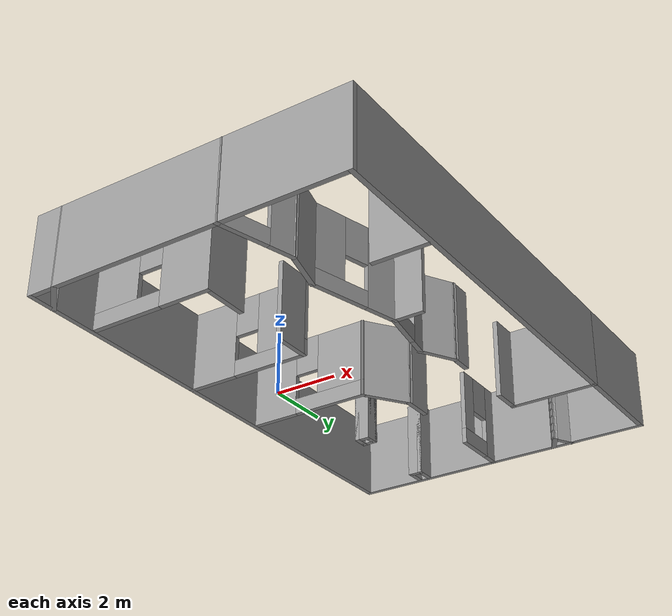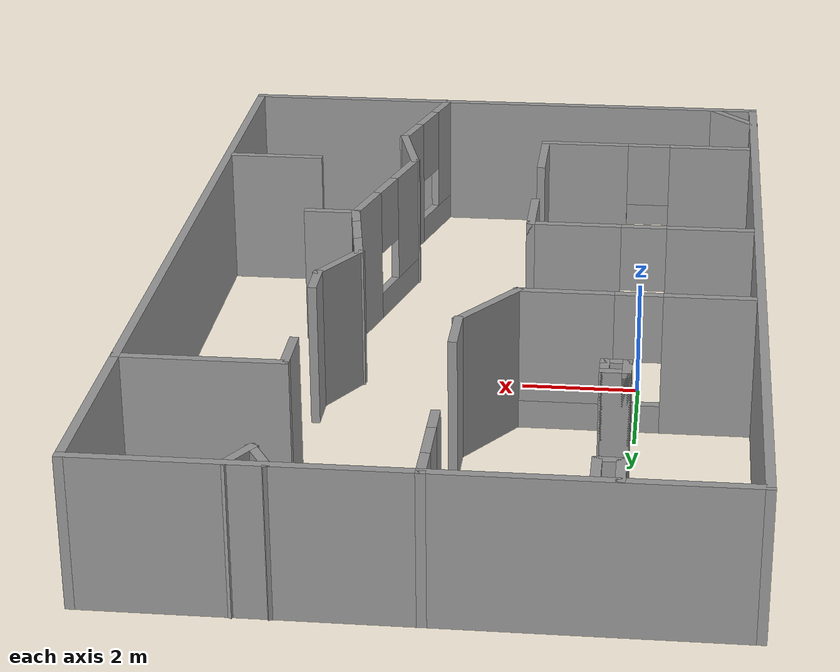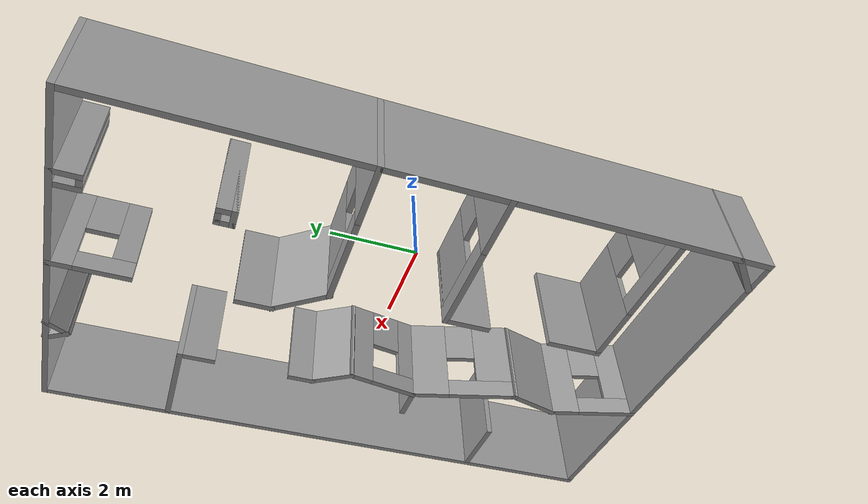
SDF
<?xml version='1.0'?>
<sdf version='1.7'>
  <model name='nano_world'>
    <pose>2.99284 0.007175 0 0 -0 0</pose>
    <link name='Wall_12'>
      <collision name='Wall_12_Collision'>
        <geometry>
          <box>
            <size>5 0.15 2.5</size>
          </box>
        </geometry>
        <pose>0 0 1.25 0 -0 0</pose>
      </collision>
      <visual name='Wall_12_Visual'>
        <pose>0 0 1.25 0 -0 0</pose>
        <geometry>
          <box>
            <size>5 0.15 2.5</size>
          </box>
        </geometry>
        <material>
          <script>
            <uri>file://media/materials/scripts/gazebo.material</uri>
            <name>Gazebo/Grey</name>
          </script>
          <ambient>1 1 1 1</ambient>
        </material>
        <meta>
          <layer>0</layer>
        </meta>
      </visual>
      <pose>-2.56785 7.99282 0 0 -0 0</pose>
    </link>
    <link name='Wall_14'>
      <pose>-0.142845 7.06783 0 0 -0 -1.5708</pose>
      <visual name='Wall_14_Visual_0'>
        <pose>-0.683991 0 1.25 0 -0 0</pose>
        <geometry>
          <box>
            <size>0.632019 0.15 2.5</size>
          </box>
        </geometry>
        <material>
          <script>
            <uri>file://media/materials/scripts/gazebo.material</uri>
            <name>Gazebo/Grey</name>
          </script>
          <ambient>1 1 1 1</ambient>
        </material>
        <meta>
          <layer>0</layer>
        </meta>
      </visual>
      <collision name='Wall_14_Collision_0'>
        <geometry>
          <box>
            <size>0.632019 0.15 2.5</size>
          </box>
        </geometry>
        <pose>-0.683991 0 1.25 0 -0 0</pose>
      </collision>
      <visual name='Wall_14_Visual_1'>
        <pose>0.316009 0 0.25 0 -0 0</pose>
        <geometry>
          <box>
            <size>1.36798 0.15 0.5</size>
          </box>
        </geometry>
        <material>
          <script>
            <uri>file://media/materials/scripts/gazebo.material</uri>
            <name>Gazebo/Grey</name>
          </script>
          <ambient>1 1 1 1</ambient>
        </material>
        <meta>
          <layer>0</layer>
        </meta>
      </visual>
      <collision name='Wall_14_Collision_1'>
        <geometry>
          <box>
            <size>1.36798 0.15 0.5</size>
          </box>
        </geometry>
        <pose>0.316009 0 0.25 0 -0 0</pose>
      </collision>
      <visual name='Wall_14_Visual_2'>
        <pose>0.716009 0 1.5 0 -0 0</pose>
        <geometry>
          <box>
            <size>0.567981 0.15 2</size>
          </box>
        </geometry>
        <material>
          <script>
            <uri>file://media/materials/scripts/gazebo.material</uri>
            <name>Gazebo/Grey</name>
          </script>
          <ambient>1 1 1 1</ambient>
        </material>
        <meta>
          <layer>0</layer>
        </meta>
      </visual>
      <collision name='Wall_14_Collision_2'>
        <geometry>
          <box>
            <size>0.567981 0.15 2</size>
          </box>
        </geometry>
        <pose>0.716009 0 1.5 0 -0 0</pose>
      </collision>
      <visual name='Wall_14_Visual_3'>
        <pose>0.032019 0 1.9 0 -0 0</pose>
        <geometry>
          <box>
            <size>0.8 0.15 1.2</size>
          </box>
        </geometry>
        <material>
          <script>
            <uri>file://media/materials/scripts/gazebo.material</uri>
            <name>Gazebo/Grey</name>
          </script>
          <ambient>1 1 1 1</ambient>
        </material>
        <meta>
          <layer>0</layer>
        </meta>
      </visual>
      <collision name='Wall_14_Collision_3'>
        <geometry>
          <box>
            <size>0.8 0.15 1.2</size>
          </box>
        </geometry>
        <pose>0.032019 0 1.9 0 -0 0</pose>
      </collision>
    </link>
    <link name='Wall_16'>
      <collision name='Wall_16_Collision'>
        <geometry>
          <box>
            <size>1 0.15 2.5</size>
          </box>
        </geometry>
        <pose>0 0 1.25 0 -0 0</pose>
      </collision>
      <visual name='Wall_16_Visual'>
        <pose>0 0 1.25 0 -0 0</pose>
        <geometry>
          <box>
            <size>1 0.15 2.5</size>
          </box>
        </geometry>
        <material>
          <script>
            <uri>file://media/materials/scripts/gazebo.material</uri>
            <name>Gazebo/Grey</name>
          </script>
          <ambient>1 1 1 1</ambient>
        </material>
        <meta>
          <layer>0</layer>
        </meta>
      </visual>
      <pose>-0.136862 3.16166 0 0 -0 -1.5708</pose>
    </link>
    <link name='Wall_18'>
      <collision name='Wall_18_Collision'>
        <geometry>
          <box>
            <size>1.65991 0.15 2.5</size>
          </box>
        </geometry>
        <pose>0 0 1.25 0 -0 0</pose>
      </collision>
      <visual name='Wall_18_Visual'>
        <pose>0 0 1.25 0 -0 0</pose>
        <geometry>
          <box>
            <size>1.65991 0.15 2.5</size>
          </box>
        </geometry>
        <material>
          <script>
            <uri>file://media/materials/scripts/gazebo.material</uri>
            <name>Gazebo/Grey</name>
          </script>
          <ambient>1 1 1 1</ambient>
        </material>
        <meta>
          <layer>0</layer>
        </meta>
      </visual>
      <pose>-0.564853 2.11474 0 0 -0 -2.17355</pose>
    </link>
    <link name='Wall_2'>
      <collision name='Wall_2_Collision'>
        <geometry>
          <box>
            <size>16.15 0.15 2.5</size>
          </box>
        </geometry>
        <pose>0 0 1.25 0 -0 0</pose>
      </collision>
      <visual name='Wall_2_Visual'>
        <pose>0 0 1.25 0 -0 0</pose>
        <geometry>
          <box>
            <size>16.15 0.15 2.5</size>
          </box>
        </geometry>
        <material>
          <script>
            <uri>file://media/materials/scripts/gazebo.material</uri>
            <name>Gazebo/Grey</name>
          </script>
          <ambient>1 1 1 1</ambient>
        </material>
        <meta>
          <layer>0</layer>
        </meta>
      </visual>
      <pose>-4.99284 -0.007175 0 0 -0 -1.5708</pose>
    </link>
    <link name='Wall_20'>
      <collision name='Wall_20_Collision'>
        <geometry>
          <box>
            <size>5.3 0.15 2.5</size>
          </box>
        </geometry>
        <pose>0 0 1.25 0 -0 0</pose>
      </collision>
      <visual name='Wall_20_Visual'>
        <pose>0 0 1.25 0 -0 0</pose>
        <geometry>
          <box>
            <size>5.3 0.15 2.5</size>
          </box>
        </geometry>
        <material>
          <script>
            <uri>file://media/materials/scripts/gazebo.material</uri>
            <name>Gazebo/Grey</name>
          </script>
          <ambient>1 1 1 1</ambient>
        </material>
        <meta>
          <layer>0</layer>
        </meta>
      </visual>
      <pose>2.43216 7.99282 0 0 -0 0</pose>
    </link>
    <link name='Wall_22'>
      <collision name='Wall_22_Collision'>
        <geometry>
          <box>
            <size>3.5 0.15 2.5</size>
          </box>
        </geometry>
        <pose>0 0 1.25 0 -0 0</pose>
      </collision>
      <visual name='Wall_22_Visual'>
        <pose>0 0 1.25 0 -0 0</pose>
        <geometry>
          <box>
            <size>3.5 0.15 2.5</size>
          </box>
        </geometry>
        <material>
          <script>
            <uri>file://media/materials/scripts/gazebo.material</uri>
            <name>Gazebo/Grey</name>
          </script>
          <ambient>1 1 1 1</ambient>
        </material>
        <meta>
          <layer>0</layer>
        </meta>
      </visual>
      <pose>5.00716 6.31783 0 0 -0 -1.5708</pose>
    </link>
    <link name='Wall_23'>
      <collision name='Wall_23_Collision'>
        <geometry>
          <box>
            <size>2.8 0.15 2.5</size>
          </box>
        </geometry>
        <pose>0 0 1.25 0 -0 0</pose>
      </collision>
      <visual name='Wall_23_Visual'>
        <pose>0 0 1.25 0 -0 0</pose>
        <geometry>
          <box>
            <size>2.8 0.15 2.5</size>
          </box>
        </geometry>
        <material>
          <script>
            <uri>file://media/materials/scripts/gazebo.material</uri>
            <name>Gazebo/Grey</name>
          </script>
          <ambient>1 1 1 1</ambient>
        </material>
        <meta>
          <layer>0</layer>
        </meta>
      </visual>
      <pose>3.68216 4.64283 0 0 -0 3.14159</pose>
    </link>
    <link name='Wall_29'>
      <collision name='Wall_29_Collision'>
        <geometry>
          <box>
            <size>1 0.15 2.5</size>
          </box>
        </geometry>
        <pose>0 0 1.25 0 -0 0</pose>
      </collision>
      <visual name='Wall_29_Visual'>
        <pose>0 0 1.25 0 -0 0</pose>
        <geometry>
          <box>
            <size>1 0.15 2.5</size>
          </box>
        </geometry>
        <material>
          <script>
            <uri>file://media/materials/scripts/gazebo.material</uri>
            <name>Gazebo/Grey</name>
          </script>
          <ambient>1 1 1 1</ambient>
        </material>
        <meta>
          <layer>0</layer>
        </meta>
      </visual>
      <pose>2.35716 4.21783 0 0 -0 -1.5708</pose>
    </link>
    <link name='Wall_31'>
      <collision name='Wall_31_Collision'>
        <geometry>
          <box>
            <size>12.8 0.15 2.5</size>
          </box>
        </geometry>
        <pose>0 0 1.25 0 -0 0</pose>
      </collision>
      <visual name='Wall_31_Visual'>
        <pose>0 0 1.25 0 -0 0</pose>
        <geometry>
          <box>
            <size>12.8 0.15 2.5</size>
          </box>
        </geometry>
        <material>
          <script>
            <uri>file://media/materials/scripts/gazebo.material</uri>
            <name>Gazebo/Grey</name>
          </script>
          <ambient>1 1 1 1</ambient>
        </material>
        <meta>
          <layer>0</layer>
        </meta>
      </visual>
      <pose>5.00716 -1.68217 0 0 -0 -1.5708</pose>
    </link>
    <link name='Wall_35'>
      <collision name='Wall_35_Collision'>
        <geometry>
          <box>
            <size>0.75 0.15 2.5</size>
          </box>
        </geometry>
        <pose>0 0 1.25 0 -0 0</pose>
      </collision>
      <visual name='Wall_35_Visual'>
        <pose>0 0 1.25 0 -0 0</pose>
        <geometry>
          <box>
            <size>0.75 0.15 2.5</size>
          </box>
        </geometry>
        <material>
          <script>
            <uri>file://media/materials/scripts/gazebo.material</uri>
            <name>Gazebo/Grey</name>
          </script>
          <ambient>1 1 1 1</ambient>
        </material>
        <meta>
          <layer>0</layer>
        </meta>
      </visual>
      <pose>2.39925 1.36893 0 0 -0 -1.5708</pose>
    </link>
    <link name='Wall_36'>
      <collision name='Wall_36_Collision'>
        <geometry>
          <box>
            <size>1.25 0.15 2.5</size>
          </box>
        </geometry>
        <pose>0 0 1.25 0 -0 0</pose>
      </collision>
      <visual name='Wall_36_Visual'>
        <pose>0 0 1.25 0 -0 0</pose>
        <geometry>
          <box>
            <size>1.25 0.15 2.5</size>
          </box>
        </geometry>
        <material>
          <script>
            <uri>file://media/materials/scripts/gazebo.material</uri>
            <name>Gazebo/Grey</name>
          </script>
          <ambient>1 1 1 1</ambient>
        </material>
        <meta>
          <layer>0</layer>
        </meta>
      </visual>
      <pose>2.12425 0.592618 0 0 -0 -2.0944</pose>
    </link>
    <link name='Wall_41'>
      <collision name='Wall_41_Collision'>
        <geometry>
          <box>
            <size>1.25 0.15 2.5</size>
          </box>
        </geometry>
        <pose>0 0 1.25 0 -0 0</pose>
      </collision>
      <visual name='Wall_41_Visual'>
        <pose>0 0 1.25 0 -0 0</pose>
        <geometry>
          <box>
            <size>1.25 0.15 2.5</size>
          </box>
        </geometry>
        <material>
          <script>
            <uri>file://media/materials/scripts/gazebo.material</uri>
            <name>Gazebo/Grey</name>
          </script>
          <ambient>1 1 1 1</ambient>
        </material>
        <meta>
          <layer>0</layer>
        </meta>
      </visual>
      <pose>-0.992845 -2.05717 0 0 -0 -1.5708</pose>
    </link>
    <link name='Wall_43'>
      <collision name='Wall_43_Collision'>
        <geometry>
          <box>
            <size>1.5 0.15 2.5</size>
          </box>
        </geometry>
        <pose>0 0 1.25 0 -0 0</pose>
      </collision>
      <visual name='Wall_43_Visual'>
        <pose>0 0 1.25 0 -0 0</pose>
        <geometry>
          <box>
            <size>1.5 0.15 2.5</size>
          </box>
        </geometry>
        <material>
          <script>
            <uri>file://media/materials/scripts/gazebo.material</uri>
            <name>Gazebo/Grey</name>
          </script>
          <ambient>1 1 1 1</ambient>
        </material>
        <meta>
          <layer>0</layer>
        </meta>
      </visual>
      <pose>-0.981755 -5.0631 0 0 -0 -1.5708</pose>
    </link>
    <link name='Wall_46'>
      <pose>-2.90676 -5.7381 0 0 -0 3.14159</pose>
      <visual name='Wall_46_Visual_0'>
        <pose>-1.16576 0 1.25 0 -0 0</pose>
        <geometry>
          <box>
            <size>1.66847 0.15 2.5</size>
          </box>
        </geometry>
        <material>
          <script>
            <uri>file://media/materials/scripts/gazebo.material</uri>
            <name>Gazebo/Grey</name>
          </script>
          <ambient>1 1 1 1</ambient>
        </material>
        <meta>
          <layer>0</layer>
        </meta>
      </visual>
      <collision name='Wall_46_Collision_0'>
        <geometry>
          <box>
            <size>1.66847 0.15 2.5</size>
          </box>
        </geometry>
        <pose>-1.16576 0 1.25 0 -0 0</pose>
      </collision>
      <visual name='Wall_46_Visual_1'>
        <pose>0.834236 0 0.25 0 -0 0</pose>
        <geometry>
          <box>
            <size>2.33153 0.15 0.5</size>
          </box>
        </geometry>
        <material>
          <script>
            <uri>file://media/materials/scripts/gazebo.material</uri>
            <name>Gazebo/Grey</name>
          </script>
          <ambient>1 1 1 1</ambient>
        </material>
        <meta>
          <layer>0</layer>
        </meta>
      </visual>
      <collision name='Wall_46_Collision_1'>
        <geometry>
          <box>
            <size>2.33153 0.15 0.5</size>
          </box>
        </geometry>
        <pose>0.834236 0 0.25 0 -0 0</pose>
      </collision>
      <visual name='Wall_46_Visual_2'>
        <pose>1.23424 0 1.5 0 -0 0</pose>
        <geometry>
          <box>
            <size>1.53153 0.15 2</size>
          </box>
        </geometry>
        <material>
          <script>
            <uri>file://media/materials/scripts/gazebo.material</uri>
            <name>Gazebo/Grey</name>
          </script>
          <ambient>1 1 1 1</ambient>
        </material>
        <meta>
          <layer>0</layer>
        </meta>
      </visual>
      <collision name='Wall_46_Collision_2'>
        <geometry>
          <box>
            <size>1.53153 0.15 2</size>
          </box>
        </geometry>
        <pose>1.23424 0 1.5 0 -0 0</pose>
      </collision>
      <visual name='Wall_46_Visual_3'>
        <pose>0.068471 0 1.9 0 -0 0</pose>
        <geometry>
          <box>
            <size>0.8 0.15 1.2</size>
          </box>
        </geometry>
        <material>
          <script>
            <uri>file://media/materials/scripts/gazebo.material</uri>
            <name>Gazebo/Grey</name>
          </script>
          <ambient>1 1 1 1</ambient>
        </material>
        <meta>
          <layer>0</layer>
        </meta>
      </visual>
      <collision name='Wall_46_Collision_3'>
        <geometry>
          <box>
            <size>0.8 0.15 1.2</size>
          </box>
        </geometry>
        <pose>0.068471 0 1.9 0 -0 0</pose>
      </collision>
    </link>
    <link name='Wall_48'>
      <collision name='Wall_48_Collision'>
        <geometry>
          <box>
            <size>10.15 0.15 2.5</size>
          </box>
        </geometry>
        <pose>0 0 1.25 0 -0 0</pose>
      </collision>
      <visual name='Wall_48_Visual'>
        <pose>0 0 1.25 0 -0 0</pose>
        <geometry>
          <box>
            <size>10.15 0.15 2.5</size>
          </box>
        </geometry>
        <material>
          <script>
            <uri>file://media/materials/scripts/gazebo.material</uri>
            <name>Gazebo/Grey</name>
          </script>
          <ambient>1 1 1 1</ambient>
        </material>
        <meta>
          <layer>0</layer>
        </meta>
      </visual>
      <pose>0.007155 -8.00718 0 0 -0 0</pose>
    </link>
    <link name='Wall_5'>
      <pose>-2.99284 1.49283 0 0 -0 0</pose>
      <visual name='Wall_5_Visual_0'>
        <pose>-1.2375 0 1.25 0 -0 0</pose>
        <geometry>
          <box>
            <size>1.675 0.15 2.5</size>
          </box>
        </geometry>
        <material>
          <script>
            <uri>file://media/materials/scripts/gazebo.material</uri>
            <name>Gazebo/Grey</name>
          </script>
          <ambient>1 1 1 1</ambient>
        </material>
        <meta>
          <layer>0</layer>
        </meta>
      </visual>
      <collision name='Wall_5_Collision_0'>
        <geometry>
          <box>
            <size>1.675 0.15 2.5</size>
          </box>
        </geometry>
        <pose>-1.2375 0 1.25 0 -0 0</pose>
      </collision>
      <visual name='Wall_5_Visual_1'>
        <pose>0.8375 0 0.25 0 -0 0</pose>
        <geometry>
          <box>
            <size>2.475 0.15 0.5</size>
          </box>
        </geometry>
        <material>
          <script>
            <uri>file://media/materials/scripts/gazebo.material</uri>
            <name>Gazebo/Grey</name>
          </script>
          <ambient>1 1 1 1</ambient>
        </material>
        <meta>
          <layer>0</layer>
        </meta>
      </visual>
      <collision name='Wall_5_Collision_1'>
        <geometry>
          <box>
            <size>2.475 0.15 0.5</size>
          </box>
        </geometry>
        <pose>0.8375 0 0.25 0 -0 0</pose>
      </collision>
      <visual name='Wall_5_Visual_2'>
        <pose>1.2375 0 1.5 0 -0 0</pose>
        <geometry>
          <box>
            <size>1.675 0.15 2</size>
          </box>
        </geometry>
        <material>
          <script>
            <uri>file://media/materials/scripts/gazebo.material</uri>
            <name>Gazebo/Grey</name>
          </script>
          <ambient>1 1 1 1</ambient>
        </material>
        <meta>
          <layer>0</layer>
        </meta>
      </visual>
      <collision name='Wall_5_Collision_2'>
        <geometry>
          <box>
            <size>1.675 0.15 2</size>
          </box>
        </geometry>
        <pose>1.2375 0 1.5 0 -0 0</pose>
      </collision>
      <visual name='Wall_5_Visual_3'>
        <pose>0 0 1.9 0 -0 0</pose>
        <geometry>
          <box>
            <size>0.8 0.15 1.2</size>
          </box>
        </geometry>
        <material>
          <script>
            <uri>file://media/materials/scripts/gazebo.material</uri>
            <name>Gazebo/Grey</name>
          </script>
          <ambient>1 1 1 1</ambient>
        </material>
        <meta>
          <layer>0</layer>
        </meta>
      </visual>
      <collision name='Wall_5_Collision_3'>
        <geometry>
          <box>
            <size>0.8 0.15 1.2</size>
          </box>
        </geometry>
        <pose>0 0 1.9 0 -0 0</pose>
      </collision>
    </link>
    <link name='Wall_52'>
      <pose>2.0071 -0.810513 0 0 -0 -1.4021</pose>
      <visual name='Wall_52_Visual_0'>
        <pose>-0.669959 0 1.25 0 -0 0</pose>
        <geometry>
          <box>
            <size>0.690408 0.15 2.5</size>
          </box>
        </geometry>
        <material>
          <script>
            <uri>file://media/materials/scripts/gazebo.material</uri>
            <name>Gazebo/Grey</name>
          </script>
          <ambient>1 1 1 1</ambient>
        </material>
        <meta>
          <layer>0</layer>
        </meta>
      </visual>
      <collision name='Wall_52_Collision_0'>
        <geometry>
          <box>
            <size>0.690408 0.15 2.5</size>
          </box>
        </geometry>
        <pose>-0.669959 0 1.25 0 -0 0</pose>
      </collision>
      <visual name='Wall_52_Visual_1'>
        <pose>0.345204 0 0.25 0 -0 0</pose>
        <geometry>
          <box>
            <size>1.33992 0.15 0.5</size>
          </box>
        </geometry>
        <material>
          <script>
            <uri>file://media/materials/scripts/gazebo.material</uri>
            <name>Gazebo/Grey</name>
          </script>
          <ambient>1 1 1 1</ambient>
        </material>
        <meta>
          <layer>0</layer>
        </meta>
      </visual>
      <collision name='Wall_52_Collision_1'>
        <geometry>
          <box>
            <size>1.33992 0.15 0.5</size>
          </box>
        </geometry>
        <pose>0.345204 0 0.25 0 -0 0</pose>
      </collision>
      <visual name='Wall_52_Visual_2'>
        <pose>0.745204 0 1.5 0 -0 0</pose>
        <geometry>
          <box>
            <size>0.539918 0.15 2</size>
          </box>
        </geometry>
        <material>
          <script>
            <uri>file://media/materials/scripts/gazebo.material</uri>
            <name>Gazebo/Grey</name>
          </script>
          <ambient>1 1 1 1</ambient>
        </material>
        <meta>
          <layer>0</layer>
        </meta>
      </visual>
      <collision name='Wall_52_Collision_2'>
        <geometry>
          <box>
            <size>0.539918 0.15 2</size>
          </box>
        </geometry>
        <pose>0.745204 0 1.5 0 -0 0</pose>
      </collision>
      <visual name='Wall_52_Visual_3'>
        <pose>0.075245 0 1.9 0 -0 0</pose>
        <geometry>
          <box>
            <size>0.8 0.15 1.2</size>
          </box>
        </geometry>
        <material>
          <script>
            <uri>file://media/materials/scripts/gazebo.material</uri>
            <name>Gazebo/Grey</name>
          </script>
          <ambient>1 1 1 1</ambient>
        </material>
        <meta>
          <layer>0</layer>
        </meta>
      </visual>
      <collision name='Wall_52_Collision_3'>
        <geometry>
          <box>
            <size>0.8 0.15 1.2</size>
          </box>
        </geometry>
        <pose>0.075245 0 1.9 0 -0 0</pose>
      </collision>
    </link>
    <link name='Wall_53'>
      <pose>1.79613 -3.11377 0 0 -0 -1.8326</pose>
      <visual name='Wall_53_Visual_0'>
        <pose>-0.956577 0 1.25 0 -0 0</pose>
        <geometry>
          <box>
            <size>1.08685 0.15 2.5</size>
          </box>
        </geometry>
        <material>
          <script>
            <uri>file://media/materials/scripts/gazebo.material</uri>
            <name>Gazebo/Grey</name>
          </script>
          <ambient>1 1 1 1</ambient>
        </material>
        <meta>
          <layer>0</layer>
        </meta>
      </visual>
      <collision name='Wall_53_Collision_0'>
        <geometry>
          <box>
            <size>1.08685 0.15 2.5</size>
          </box>
        </geometry>
        <pose>-0.956577 0 1.25 0 -0 0</pose>
      </collision>
      <visual name='Wall_53_Visual_1'>
        <pose>0.543423 0 0.25 0 -0 0</pose>
        <geometry>
          <box>
            <size>1.91315 0.15 0.5</size>
          </box>
        </geometry>
        <material>
          <script>
            <uri>file://media/materials/scripts/gazebo.material</uri>
            <name>Gazebo/Grey</name>
          </script>
          <ambient>1 1 1 1</ambient>
        </material>
        <meta>
          <layer>0</layer>
        </meta>
      </visual>
      <collision name='Wall_53_Collision_1'>
        <geometry>
          <box>
            <size>1.91315 0.15 0.5</size>
          </box>
        </geometry>
        <pose>0.543423 0 0.25 0 -0 0</pose>
      </collision>
      <visual name='Wall_53_Visual_2'>
        <pose>0.943423 0 1.5 0 -0 0</pose>
        <geometry>
          <box>
            <size>1.11315 0.15 2</size>
          </box>
        </geometry>
        <material>
          <script>
            <uri>file://media/materials/scripts/gazebo.material</uri>
            <name>Gazebo/Grey</name>
          </script>
          <ambient>1 1 1 1</ambient>
        </material>
        <meta>
          <layer>0</layer>
        </meta>
      </visual>
      <collision name='Wall_53_Collision_2'>
        <geometry>
          <box>
            <size>1.11315 0.15 2</size>
          </box>
        </geometry>
        <pose>0.943423 0 1.5 0 -0 0</pose>
      </collision>
      <visual name='Wall_53_Visual_3'>
        <pose>-0.013154 0 1.9 0 -0 0</pose>
        <geometry>
          <box>
            <size>0.8 0.15 1.2</size>
          </box>
        </geometry>
        <material>
          <script>
            <uri>file://media/materials/scripts/gazebo.material</uri>
            <name>Gazebo/Grey</name>
          </script>
          <ambient>1 1 1 1</ambient>
        </material>
        <meta>
          <layer>0</layer>
        </meta>
      </visual>
      <collision name='Wall_53_Collision_3'>
        <geometry>
          <box>
            <size>0.8 0.15 1.2</size>
          </box>
        </geometry>
        <pose>-0.013154 0 1.9 0 -0 0</pose>
      </collision>
    </link>
    <link name='Wall_54'>
      <collision name='Wall_54_Collision'>
        <geometry>
          <box>
            <size>1.5 0.15 2.5</size>
          </box>
        </geometry>
        <pose>0 0 1.25 0 -0 0</pose>
      </collision>
      <visual name='Wall_54_Visual'>
        <pose>0 0 1.25 0 -0 0</pose>
        <geometry>
          <box>
            <size>1.5 0.15 2.5</size>
          </box>
        </geometry>
        <material>
          <script>
            <uri>file://media/materials/scripts/gazebo.material</uri>
            <name>Gazebo/Grey</name>
          </script>
          <ambient>1 1 1 1</ambient>
        </material>
        <meta>
          <layer>0</layer>
        </meta>
      </visual>
      <pose>1.60224 -5.1422 0 0 -0 -1.30868</pose>
    </link>
    <link name='Wall_55'>
      <pose>1.47266 -6.90067 0 0 -0 -1.83934</pose>
      <visual name='Wall_55_Visual_0'>
        <pose>-0.796386 0 1.25 0 -0 0</pose>
        <geometry>
          <box>
            <size>0.852496 0.15 2.5</size>
          </box>
        </geometry>
        <material>
          <script>
            <uri>file://media/materials/scripts/gazebo.material</uri>
            <name>Gazebo/Grey</name>
          </script>
          <ambient>1 1 1 1</ambient>
        </material>
        <meta>
          <layer>0</layer>
        </meta>
      </visual>
      <collision name='Wall_55_Collision_0'>
        <geometry>
          <box>
            <size>0.852496 0.15 2.5</size>
          </box>
        </geometry>
        <pose>-0.796386 0 1.25 0 -0 0</pose>
      </collision>
      <visual name='Wall_55_Visual_1'>
        <pose>0.426248 0 0.25 0 -0 0</pose>
        <geometry>
          <box>
            <size>1.59277 0.15 0.5</size>
          </box>
        </geometry>
        <material>
          <script>
            <uri>file://media/materials/scripts/gazebo.material</uri>
            <name>Gazebo/Grey</name>
          </script>
          <ambient>1 1 1 1</ambient>
        </material>
        <meta>
          <layer>0</layer>
        </meta>
      </visual>
      <collision name='Wall_55_Collision_1'>
        <geometry>
          <box>
            <size>1.59277 0.15 0.5</size>
          </box>
        </geometry>
        <pose>0.426248 0 0.25 0 -0 0</pose>
      </collision>
      <visual name='Wall_55_Visual_2'>
        <pose>0.826248 0 1.5 0 -0 0</pose>
        <geometry>
          <box>
            <size>0.792771 0.15 2</size>
          </box>
        </geometry>
        <material>
          <script>
            <uri>file://media/materials/scripts/gazebo.material</uri>
            <name>Gazebo/Grey</name>
          </script>
          <ambient>1 1 1 1</ambient>
        </material>
        <meta>
          <layer>0</layer>
        </meta>
      </visual>
      <collision name='Wall_55_Collision_2'>
        <geometry>
          <box>
            <size>0.792771 0.15 2</size>
          </box>
        </geometry>
        <pose>0.826248 0 1.5 0 -0 0</pose>
      </collision>
      <visual name='Wall_55_Visual_3'>
        <pose>0.029862 0 1.9 0 -0 0</pose>
        <geometry>
          <box>
            <size>0.8 0.15 1.2</size>
          </box>
        </geometry>
        <material>
          <script>
            <uri>file://media/materials/scripts/gazebo.material</uri>
            <name>Gazebo/Grey</name>
          </script>
          <ambient>1 1 1 1</ambient>
        </material>
        <meta>
          <layer>0</layer>
        </meta>
      </visual>
      <collision name='Wall_55_Collision_3'>
        <geometry>
          <box>
            <size>0.8 0.15 1.2</size>
          </box>
        </geometry>
        <pose>0.029862 0 1.9 0 -0 0</pose>
      </collision>
    </link>
    <link name='Wall_57'>
      <collision name='Wall_57_Collision'>
        <geometry>
          <box>
            <size>1.25 0.15 2.5</size>
          </box>
        </geometry>
        <pose>0 0 1.25 0 -0 0</pose>
      </collision>
      <visual name='Wall_57_Visual'>
        <pose>0 0 1.25 0 -0 0</pose>
        <geometry>
          <box>
            <size>1.25 0.15 2.5</size>
          </box>
        </geometry>
        <material>
          <script>
            <uri>file://media/materials/scripts/gazebo.material</uri>
            <name>Gazebo/Grey</name>
          </script>
          <ambient>1 1 1 1</ambient>
        </material>
        <meta>
          <layer>0</layer>
        </meta>
      </visual>
      <pose>-4.58718 -7.60573 0 0 -0 -0.785398</pose>
    </link>
    <link name='Wall_62'>
      <collision name='Wall_62_Collision'>
        <geometry>
          <box>
            <size>1.75 0.15 2.5</size>
          </box>
        </geometry>
        <pose>0 0 1.25 0 -0 0</pose>
      </collision>
      <visual name='Wall_62_Visual'>
        <pose>0 0 1.25 0 -0 0</pose>
        <geometry>
          <box>
            <size>1.75 0.15 2.5</size>
          </box>
        </geometry>
        <material>
          <script>
            <uri>file://media/materials/scripts/gazebo.material</uri>
            <name>Gazebo/Grey</name>
          </script>
          <ambient>1 1 1 1</ambient>
        </material>
        <meta>
          <layer>0</layer>
        </meta>
      </visual>
      <pose>4.07732 -4.49022 0 0 -0 0</pose>
    </link>
    <link name='Wall_67'>
      <collision name='Wall_67_Collision'>
        <geometry>
          <box>
            <size>1 0.15 2.5</size>
          </box>
        </geometry>
        <pose>0 0 1.25 0 -0 0</pose>
      </collision>
      <visual name='Wall_67_Visual'>
        <pose>0 0 1.25 0 -0 0</pose>
        <geometry>
          <box>
            <size>1 0.15 2.5</size>
          </box>
        </geometry>
        <material>
          <script>
            <uri>file://media/materials/scripts/gazebo.material</uri>
            <name>Gazebo/Grey</name>
          </script>
          <ambient>1 1 1 1</ambient>
        </material>
        <meta>
          <layer>0</layer>
        </meta>
      </visual>
      <pose>2.58995 -1.73733 0 0 -0 0</pose>
    </link>
    <link name='Wall_7'>
      <pose>-2.99284 -1.50717 0 0 -0 0</pose>
      <visual name='Wall_7_Visual_0'>
        <pose>-1.2375 0 1.25 0 -0 0</pose>
        <geometry>
          <box>
            <size>1.675 0.15 2.5</size>
          </box>
        </geometry>
        <material>
          <script>
            <uri>file://media/materials/scripts/gazebo.material</uri>
            <name>Gazebo/Grey</name>
          </script>
          <ambient>1 1 1 1</ambient>
        </material>
        <meta>
          <layer>0</layer>
        </meta>
      </visual>
      <collision name='Wall_7_Collision_0'>
        <geometry>
          <box>
            <size>1.675 0.15 2.5</size>
          </box>
        </geometry>
        <pose>-1.2375 0 1.25 0 -0 0</pose>
      </collision>
      <visual name='Wall_7_Visual_1'>
        <pose>0.8375 0 0.25 0 -0 0</pose>
        <geometry>
          <box>
            <size>2.475 0.15 0.5</size>
          </box>
        </geometry>
        <material>
          <script>
            <uri>file://media/materials/scripts/gazebo.material</uri>
            <name>Gazebo/Grey</name>
          </script>
          <ambient>1 1 1 1</ambient>
        </material>
        <meta>
          <layer>0</layer>
        </meta>
      </visual>
      <collision name='Wall_7_Collision_1'>
        <geometry>
          <box>
            <size>2.475 0.15 0.5</size>
          </box>
        </geometry>
        <pose>0.8375 0 0.25 0 -0 0</pose>
      </collision>
      <visual name='Wall_7_Visual_2'>
        <pose>1.2375 0 1.5 0 -0 0</pose>
        <geometry>
          <box>
            <size>1.675 0.15 2</size>
          </box>
        </geometry>
        <material>
          <script>
            <uri>file://media/materials/scripts/gazebo.material</uri>
            <name>Gazebo/Grey</name>
          </script>
          <ambient>1 1 1 1</ambient>
        </material>
        <meta>
          <layer>0</layer>
        </meta>
      </visual>
      <collision name='Wall_7_Collision_2'>
        <geometry>
          <box>
            <size>1.675 0.15 2</size>
          </box>
        </geometry>
        <pose>1.2375 0 1.5 0 -0 0</pose>
      </collision>
      <visual name='Wall_7_Visual_3'>
        <pose>0 0 1.9 0 -0 0</pose>
        <geometry>
          <box>
            <size>0.8 0.15 1.2</size>
          </box>
        </geometry>
        <material>
          <script>
            <uri>file://media/materials/scripts/gazebo.material</uri>
            <name>Gazebo/Grey</name>
          </script>
          <ambient>1 1 1 1</ambient>
        </material>
        <meta>
          <layer>0</layer>
        </meta>
      </visual>
      <collision name='Wall_7_Collision_3'>
        <geometry>
          <box>
            <size>0.8 0.15 1.2</size>
          </box>
        </geometry>
        <pose>0 0 1.9 0 -0 0</pose>
      </collision>
    </link>
    <link name='Wall_70'>
      <collision name='Wall_70_Collision'>
        <geometry>
          <box>
            <size>0.5 0.15 2.5</size>
          </box>
        </geometry>
        <pose>0 0 1.25 0 -0 0</pose>
      </collision>
      <visual name='Wall_70_Visual'>
        <pose>0 0 1.25 0 -0 0</pose>
        <geometry>
          <box>
            <size>0.5 0.15 2.5</size>
          </box>
        </geometry>
        <material>
          <script>
            <uri>file://media/materials/scripts/gazebo.material</uri>
            <name>Gazebo/Grey</name>
          </script>
          <ambient>1 1 1 1</ambient>
        </material>
        <meta>
          <layer>0</layer>
        </meta>
      </visual>
      <pose>-2.89381 4.29486 0 0 -0 -1.5708</pose>
    </link>
    <link name='Wall_71'>
      <collision name='Wall_71_Collision'>
        <geometry>
          <box>
            <size>0.5 0.15 2.5</size>
          </box>
        </geometry>
        <pose>0 0 1.25 0 -0 0</pose>
      </collision>
      <visual name='Wall_71_Visual'>
        <pose>0 0 1.25 0 -0 0</pose>
        <geometry>
          <box>
            <size>0.5 0.15 2.5</size>
          </box>
        </geometry>
        <material>
          <script>
            <uri>file://media/materials/scripts/gazebo.material</uri>
            <name>Gazebo/Grey</name>
          </script>
          <ambient>1 1 1 1</ambient>
        </material>
        <meta>
          <layer>0</layer>
        </meta>
      </visual>
      <pose>-2.71881 4.11986 0 0 -0 0</pose>
    </link>
    <link name='Wall_72'>
      <collision name='Wall_72_Collision'>
        <geometry>
          <box>
            <size>0.5 0.15 2.5</size>
          </box>
        </geometry>
        <pose>0 0 1.25 0 -0 0</pose>
      </collision>
      <visual name='Wall_72_Visual'>
        <pose>0 0 1.25 0 -0 0</pose>
        <geometry>
          <box>
            <size>0.5 0.15 2.5</size>
          </box>
        </geometry>
        <material>
          <script>
            <uri>file://media/materials/scripts/gazebo.material</uri>
            <name>Gazebo/Grey</name>
          </script>
          <ambient>1 1 1 1</ambient>
        </material>
        <meta>
          <layer>0</layer>
        </meta>
      </visual>
      <pose>-2.54381 4.29486 0 0 -0 1.5708</pose>
    </link>
    <link name='Wall_73'>
      <collision name='Wall_73_Collision'>
        <geometry>
          <box>
            <size>0.5 0.15 2.5</size>
          </box>
        </geometry>
        <pose>0 0 1.25 0 -0 0</pose>
      </collision>
      <visual name='Wall_73_Visual'>
        <pose>0 0 1.25 0 -0 0</pose>
        <geometry>
          <box>
            <size>0.5 0.15 2.5</size>
          </box>
        </geometry>
        <material>
          <script>
            <uri>file://media/materials/scripts/gazebo.material</uri>
            <name>Gazebo/Grey</name>
          </script>
          <ambient>1 1 1 1</ambient>
        </material>
        <meta>
          <layer>0</layer>
        </meta>
      </visual>
      <pose>-2.71881 4.46986 0 0 -0 3.14159</pose>
    </link>
    <link name='Wall_75'>
      <collision name='Wall_75_Collision'>
        <geometry>
          <box>
            <size>0.75 0.15 2.5</size>
          </box>
        </geometry>
        <pose>0 0 1.25 0 -0 0</pose>
      </collision>
      <visual name='Wall_75_Visual'>
        <pose>0 0 1.25 0 -0 0</pose>
        <geometry>
          <box>
            <size>0.75 0.15 2.5</size>
          </box>
        </geometry>
        <material>
          <script>
            <uri>file://media/materials/scripts/gazebo.material</uri>
            <name>Gazebo/Grey</name>
          </script>
          <ambient>1 1 1 1</ambient>
        </material>
        <meta>
          <layer>0</layer>
        </meta>
      </visual>
      <pose>-2.92196 7.68233 0 0 -0 -1.5708</pose>
    </link>
    <link name='Wall_76'>
      <collision name='Wall_76_Collision'>
        <geometry>
          <box>
            <size>0.5 0.15 2.5</size>
          </box>
        </geometry>
        <pose>0 0 1.25 0 -0 0</pose>
      </collision>
      <visual name='Wall_76_Visual'>
        <pose>0 0 1.25 0 -0 0</pose>
        <geometry>
          <box>
            <size>0.5 0.15 2.5</size>
          </box>
        </geometry>
        <material>
          <script>
            <uri>file://media/materials/scripts/gazebo.material</uri>
            <name>Gazebo/Grey</name>
          </script>
          <ambient>1 1 1 1</ambient>
        </material>
        <meta>
          <layer>0</layer>
        </meta>
      </visual>
      <pose>-2.74696 7.38233 0 0 -0 0</pose>
    </link>
    <link name='Wall_77'>
      <collision name='Wall_77_Collision'>
        <geometry>
          <box>
            <size>0.75 0.15 2.5</size>
          </box>
        </geometry>
        <pose>0 0 1.25 0 -0 0</pose>
      </collision>
      <visual name='Wall_77_Visual'>
        <pose>0 0 1.25 0 -0 0</pose>
        <geometry>
          <box>
            <size>0.75 0.15 2.5</size>
          </box>
        </geometry>
        <material>
          <script>
            <uri>file://media/materials/scripts/gazebo.material</uri>
            <name>Gazebo/Grey</name>
          </script>
          <ambient>1 1 1 1</ambient>
        </material>
        <meta>
          <layer>0</layer>
        </meta>
      </visual>
      <pose>-2.57196 7.68233 0 0 -0 1.5708</pose>
    </link>
    <link name='Wall_79'>
      <collision name='Wall_79_Collision'>
        <geometry>
          <box>
            <size>0.75 0.15 2.5</size>
          </box>
        </geometry>
        <pose>0 0 1.25 0 -0 0</pose>
      </collision>
      <visual name='Wall_79_Visual'>
        <pose>0 0 1.25 0 -0 0</pose>
        <geometry>
          <box>
            <size>0.75 0.15 2.5</size>
          </box>
        </geometry>
        <material>
          <script>
            <uri>file://media/materials/scripts/gazebo.material</uri>
            <name>Gazebo/Grey</name>
          </script>
          <ambient>1 1 1 1</ambient>
        </material>
        <meta>
          <layer>0</layer>
        </meta>
      </visual>
      <pose>2.19332 7.73844 0 0 -0 -1.0472</pose>
    </link>
    <link name='Wall_80'>
      <collision name='Wall_80_Collision'>
        <geometry>
          <box>
            <size>0.75 0.15 2.5</size>
          </box>
        </geometry>
        <pose>0 0 1.25 0 -0 0</pose>
      </collision>
      <visual name='Wall_80_Visual'>
        <pose>0 0 1.25 0 -0 0</pose>
        <geometry>
          <box>
            <size>0.75 0.15 2.5</size>
          </box>
        </geometry>
        <material>
          <script>
            <uri>file://media/materials/scripts/gazebo.material</uri>
            <name>Gazebo/Grey</name>
          </script>
          <ambient>1 1 1 1</ambient>
        </material>
        <meta>
          <layer>0</layer>
        </meta>
      </visual>
      <pose>2.49332 7.73844 0 0 -0 1.0472</pose>
    </link>
    <static>1</static>
  </model>
</sdf>
